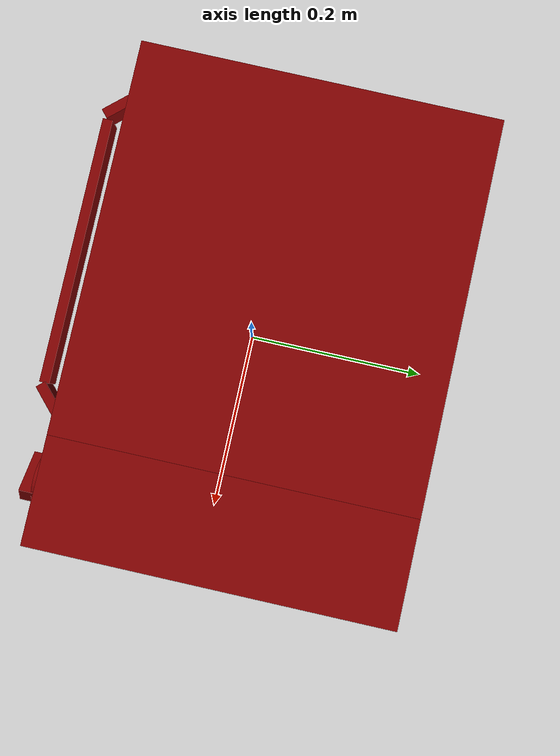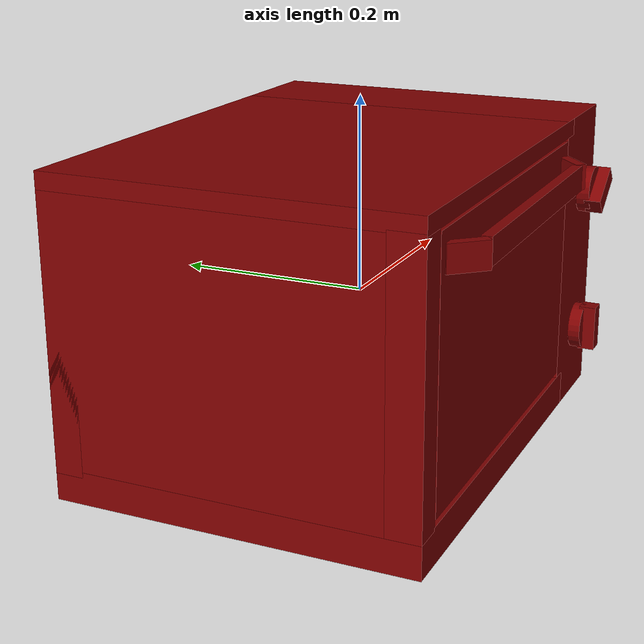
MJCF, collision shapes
<?xml version='1.0' encoding='UTF-8'?>
<mujoco model="model">
  <option timestep="0.002" gravity="0.0 0.0 -9.81"/>
  <compiler angle="radian"/>
  <asset>
    <mesh file="visuals/Body001.obj" name="Body001_vis"/>
    <mesh file="visuals/Container001.obj" name="Container001_vis"/>
    <mesh file="visuals/Door001.obj" name="Door001_vis"/>
    <mesh file="visuals/Door001_Clear.obj" name="Door001_Clear_vis"/>
    <mesh file="visuals/Knob001.obj" name="Knob001_vis"/>
    <mesh file="visuals/Knob002.obj" name="Knob002_vis"/>
    <texture file="visuals/T_BC001.png" name="Body001_material" type="2d"/>
    <material name="Body001_material" rgba="1 1 1 1.0" texture="Body001_material" shininess="1" specular="6"/>
    <texture file="visuals/T_BC001.png" name="Container001_material" type="2d"/>
    <material name="Container001_material" rgba="1 1 1 1.0" texture="Container001_material" shininess="0.141421377658844" specular="0.3103448502657381"/>
    <texture file="visuals/T_BC001.png" name="Door001_material" type="2d"/>
    <material name="Door001_material" rgba="1 1 1 1.0" texture="Door001_material" shininess="0.6" specular="2"/>
    <texture file="visuals/T_BC001.png" name="Door001_Clear_material" type="2d"/>
    <material name="Door001_Clear_material" rgba="1 1 1 0.7896907329559326" texture="Door001_Clear_material" shininess="0.141421377658844" specular="0.3103448502657381"/>
    <texture file="visuals/T_BC001.png" name="Knob001_material" type="2d"/>
    <material name="Knob001_material" rgba="1 1 1 1.0" texture="Knob001_material" shininess="0.141421377658844" specular="0.3103448502657381"/>
    <texture file="visuals/T_BC001.png" name="Knob002_material" type="2d"/>
    <material name="Knob002_material" rgba="1 1 1 1.0" texture="Knob002_material" shininess="0.141421377658844" specular="0.3103448502657381"/>
  </asset>
  <default>
    <default class="visual">
      <geom conaffinity="0" contype="0" group="1" type="mesh"/>
    </default>
    <default class="collision">
      <geom group="0" rgba="0.5 0 0 0.5"/>
    </default>
    <default class="spawn">
      <geom group="0" rgba="1 1 1 0.5" contype="0" conaffinity="0"/>
      <site group="0" rgba="1 1 1 0.5"/>
    </default>
    <default class="region">
      <geom group="1" conaffinity="0" contype="0" rgba="0 1 0 0"/>
    </default>
  </default>
  <worldbody>
    <body>
      <body name="object">
        <geom mesh="Body001_vis" type="mesh" solimp="0.998 0.998 0.001" solref="0.001 1" friction="0.95 0.3 0.1" class="visual" material="Body001_material"/>
        <geom class="collision" type="box" pos="-0.239847 0.031707 0.009233" size="0.016103293746709824 0.16864113509655 0.1361086219549179" quat="1.0 0.0 0.0 0.0"/>
        <geom class="collision" type="box" pos="-0.045299 0.014824 -0.141983" size="0.2106505185365677 0.18552252650260925 0.01835312321782112" quat="1.0 0.0 0.0 0.0"/>
        <geom class="collision" type="box" pos="-0.046929 0.185510 0.013824" size="0.20902132987976074 0.014838124625384808 0.14651153981685638" quat="1.0 0.0 0.0 0.0"/>
        <geom class="collision" type="box" pos="0.201390 0.014825 0.000000" size="0.05456048622727394 0.18552327156066895 0.16033624112606049" quat="1.0 0.0 0.0 0.0"/>
        <geom class="collision" type="box" pos="-0.044852 0.014824 0.151618" size="0.2110985964536667 0.18552300333976746 0.008718099445104599" quat="1.0 0.0 0.0 0.0"/>
        <geom class="collision" type="box" pos="-0.223048 0.030425 -0.003781" size="0.008748199790716171 0.14672890305519104 0.016295943409204483" quat="1.0 0.0 0.0 0.0"/>
        <geom class="collision" type="box" pos="-0.223048 0.030425 -0.041953" size="0.008748199790716171 0.14672890305519104 0.016295943409204483" quat="1.0 0.0 0.0 0.0"/>
        <geom class="collision" type="box" pos="0.145772 0.030425 -0.004404" size="0.008748222142457962 0.1467292159795761 0.01597226783633232" quat="1.0 0.0 0.0 0.0"/>
        <geom class="collision" type="box" pos="0.145772 0.030425 -0.041975" size="0.008748199790716171 0.14672890305519104 0.016295943409204483" quat="1.0 0.0 0.0 0.0"/>
        <geom class="collision" type="box" pos="-0.241250 -0.153254 0.009233" size="0.014700651168823242 0.01744471862912178 0.13610891997814178" quat="1.0 0.0 0.0 0.0"/>
        <body name="Container001">
          <joint axis="0.0 -1.0 0.0" pos="-0.039005 0.011501 -0.025094" limited="true" name="Container001_joint" range="0.0 0.26" type="slide" damping="1" frictionloss="1" armature=".01" stiffness="0.05"/>
          <geom mesh="Container001_vis" type="mesh" solimp="0.998 0.998 0.001" solref="0.001 1" friction="0.95 0.3 0.1" class="visual" material="Container001_material"/>
          <geom class="collision" type="box" pos="-0.038349 0.011718 -0.033122" size="0.1529725193977356 0.12284987419843674 0.0030371074099093676" quat="1.0 0.0 0.0 0.0"/>
          <geom class="collision" type="box" pos="-0.211341 0.011638 -0.023408" size="0.009668748825788498 0.12300089001655579 0.001667578355409205" quat="1.0 0.0 0.0 0.0"/>
          <geom class="collision" type="box" pos="-0.196781 0.011631 -0.028198" size="0.009363675490021706 0.12300733476877213 0.0017728143138810992" quat="0.9440328478813171 -2.0632493047401113e-08 0.3298514187335968 7.209131958063608e-09"/>
          <geom class="collision" type="box" pos="0.120010 0.011631 -0.028198" size="0.009363675490021706 0.12300733476877213 0.001772815827280283" quat="7.127249546101666e-08 -0.9440328478813171 -2.4903089368422116e-08 -0.3298514187335968"/>
          <geom class="collision" type="box" pos="0.133221 0.011638 -0.023408" size="0.009668748825788498 0.12300089001655579 0.0016675770748406649" quat="1.0 0.0 0.0 0.0"/>
          <geom class="collision" type="box" pos="-0.192158 0.013689 -0.022930" size="0.010679437778890133 0.10141760855913162 0.0015187599929049611" quat="0.8347760438919067 4.428884636809016e-08 0.5505896806716919 -1.4126166902883597e-09"/>
          <geom class="collision" type="box" pos="-0.041494 -0.099872 -0.022452" size="0.010395567864179611 0.13789184391498566 0.0013619262026622891" quat="0.560017466545105 -0.4317176938056946 0.4317167103290558 0.5600187182426453"/>
          <geom class="collision" type="box" pos="0.114873 0.013689 -0.022930" size="0.010679437778890133 0.10141760855913162 0.0015187592944130301" quat="3.0570728171142036e-08 0.8347760438919067 7.635383880710833e-09 0.5505896806716919"/>
          <geom class="collision" type="box" pos="-0.041494 0.127587 -0.022452" size="0.010395568795502186 0.13789185881614685 0.0013619264354929328" quat="0.43171998858451843 -0.560014545917511 -0.5600216388702393 -0.43171441555023193"/>
          <geom class="collision" type="box" pos="-0.188498 -0.089711 -0.022930" size="0.010601936839520931 0.007320170756429434 0.0014857678906992078" quat="0.8021135926246643 -0.15250766277313232 0.529046893119812 0.2312241494655609"/>
          <geom class="collision" type="box" pos="-0.179625 -0.096934 -0.022930" size="0.010463968850672245 0.007741295266896486 0.0014083052519708872" quat="0.7184903621673584 -0.28031352162361145 0.4738919734954834 0.42499685287475586"/>
          <geom class="collision" type="box" pos="-0.200352 0.013973 -0.014919" size="0.004787334240972996 0.10587436705827713 0.0010674488730728626" quat="1.0 0.0 0.0 0.0"/>
          <geom class="collision" type="box" pos="-0.038654 -0.103487 -0.014919" size="0.1498337984085083 0.0026962740812450647 0.0010674601653590798" quat="1.0 0.0 0.0 0.0"/>
          <geom class="collision" type="box" pos="-0.197350 -0.093677 -0.014919" size="0.004690607078373432 0.005177871324121952 0.001067434437572956" quat="0.9630976915359497 -7.488370812325229e-08 -9.148788393531504e-09 0.26915204524993896"/>
          <geom class="collision" type="box" pos="-0.190555 -0.099359 -0.014919" size="0.004428202286362648 0.006440978031605482 0.001067434437572956" quat="0.8660538792610168 -1.892820655768901e-08 -1.0926773263975065e-08 0.49995070695877075"/>
          <geom class="collision" type="box" pos="-0.190555 0.126876 -0.014919" size="0.004428203217685223 0.0064409771002829075 0.001067434437572956" quat="4.651262841548487e-08 -0.4999507665634155 -0.8660538196563721 -7.043785643645606e-08"/>
          <geom class="collision" type="box" pos="-0.197350 0.121193 -0.014919" size="0.004690608009696007 0.0051778703927993774 0.001067434437572956" quat="8.102094284367922e-08 0.26915183663368225 0.9630977511405945 9.41175226643054e-09"/>
          <geom class="collision" type="box" pos="-0.179625 0.124450 -0.022930" size="0.01046396978199482 0.007741293404251337 0.001408305368386209" quat="0.47389188408851624 -0.4249967038631439 -0.7184905409812927 -0.2803133726119995"/>
          <geom class="collision" type="box" pos="-0.188498 0.117228 -0.022930" size="0.010601934976875782 0.0073201400227844715 0.0014857678906992078" quat="0.5290468335151672 -0.23122408986091614 -0.8021136522293091 -0.15250760316848755"/>
          <geom class="collision" type="box" pos="-0.038654 0.131908 -0.014919" size="0.1498337984085083 0.0026962740812450647 0.0010674601653590798" quat="1.0 0.0 0.0 0.0"/>
          <geom class="collision" type="box" pos="0.111319 0.117228 -0.022930" size="0.010601936839520931 0.007320139557123184 0.001485767774283886" quat="0.23122403025627136 0.529046893119812 0.15250752866268158 -0.8021136522293091"/>
          <geom class="collision" type="box" pos="0.102343 0.124450 -0.022930" size="0.010463968850672245 0.007741293404251337 0.0014083050191402435" quat="0.42499667406082153 0.4738917648792267 0.2803133726119995 -0.7184906601905823"/>
          <geom class="collision" type="box" pos="0.120069 0.121193 -0.014919" size="0.0046906243078410625 0.0051778703927993774 0.001067434437572956" quat="0.2691517472267151 6.8937788810785605e-09 1.7478615887966953e-08 -0.9630978107452393"/>
          <geom class="collision" type="box" pos="0.113274 0.126876 -0.014919" size="0.004428204149007797 0.006440978497266769 0.001067434437572956" quat="0.49995073676109314 1.88726119176863e-08 -3.26926254956561e-08 -0.8660538196563721"/>
          <geom class="collision" type="box" pos="0.113725 -0.099359 -0.014919" size="0.004428202286362648 0.006440978031605482 0.001067434437572956" quat="6.538523678045749e-08 -0.8660538792610168 0.49995070695877075 -3.774524515165467e-08"/>
          <geom class="collision" type="box" pos="0.120520 -0.093677 -0.014919" size="0.004690627567470074 0.005177873652428389 0.001067434437572956" quat="7.576508664897119e-08 -0.9630977511405945 0.26915186643600464 -9.395116684629556e-09"/>
          <geom class="collision" type="box" pos="0.102343 -0.096934 -0.022930" size="0.010463970713317394 0.007741294335573912 0.0014083052519708872" quat="0.28031328320503235 0.7184906005859375 -0.42499667406082153 0.473891943693161"/>
          <geom class="collision" type="box" pos="0.111217 -0.089711 -0.022930" size="0.010601936839520931 0.0073201400227844715 0.0014857678906992078" quat="0.15250754356384277 0.8021135926246643 -0.23122413456439972 0.529046893119812"/>
          <geom class="collision" type="box" pos="0.123303 0.013973 -0.014919" size="0.0047873323783278465 0.10587436705827713 0.0010674488730728626" quat="1.0 0.0 0.0 0.0"/>
        </body>
        <body name="Door001">
          <joint axis="1.0 0.0 0.0" pos="0.004049 -0.166860 -0.122088" limited="true" name="Door001_joint" range="0.0 1.5707963267948966" type="hinge" damping="1" frictionloss="1" armature=".01" stiffness="1" springref="-0.2"/>
          <geom mesh="Door001_vis" type="mesh" solimp="0.998 0.998 0.001" solref="0.001 1" friction="0.95 0.3 0.1" class="visual" material="Door001_material"/>
          <geom class="collision" type="box" pos="-0.039341 -0.167110 0.011275" size="0.18538400530815125 0.0035882568918168545 0.12862595915794373" quat="1.0 0.0 0.0 0.0"/>
          <geom class="collision" type="box" pos="0.116597 -0.183692 0.114183" size="0.019696667790412903 0.005493865814059973 0.013131000101566315" quat="1.814838412883546e-07 0.9320859909057617 0.36223703622817993 7.053017014868601e-08"/>
          <geom class="collision" type="box" pos="-0.040084 -0.193701 0.113872" size="0.1399654597043991 0.005172303412109613 0.01313098892569542" quat="1.0 0.0 0.0 0.0"/>
          <geom class="collision" type="box" pos="-0.198307 -0.183410 0.114183" size="0.020143670961260796 0.005374647676944733 0.013131000101566315" quat="0.9129475355148315 0.0 -0.0 -0.4080769717693329"/>
          <body name="Door001_Clear">
            <geom mesh="Door001_Clear_vis" type="mesh" solimp="0.998 0.998 0.001" solref="0.001 1" friction="0.95 0.3 0.1" class="visual" material="Door001_Clear_material"/>
            <geom class="collision" type="box" pos="-0.041207 -0.165826 0.008301" size="0.1293821483850479 0.001589049817994237 0.07643870264291763" quat="1.0 0.0 0.0 0.0"/>
          </body>
        </body>
        <body name="Knob001">
          <joint axis="0.0 1.0 0.0" pos="0.201755 -0.185671 0.078255" limited="true" name="Knob001_joint" range="0.0 4.39822971502571" type="hinge" damping="0.05" armature="0.001" springref="-0.4"/>
          <geom mesh="Knob001_vis" type="mesh" solimp="0.998 0.998 0.001" solref="0.001 1" friction="0.95 0.3 0.1" class="visual" material="Knob001_material"/>
          <geom class="collision" type="box" pos="0.201954 -0.191332 0.078049" size="0.009441480040550232 0.009057309478521347 0.024213304743170738" quat="0.894934356212616 0.0 0.44619786739349365 0.0"/>
          <geom class="collision" type="cylinder" pos="0.201740 -0.180617 0.078268" size="0.024659136310219765 0.007099910639226437" quat="0.7071067690849304 0.7071067690849304 0.0 0.0"/>
        </body>
        <body name="Knob002">
          <joint axis="0.0 1.0 0.0" pos="0.202067 -0.182695 -0.078672" limited="true" name="Knob002_joint" range="0.0 4.014257279586958" type="hinge" damping="0.05" armature="0.001"/>
          <geom mesh="Knob002_vis" type="mesh" solimp="0.998 0.998 0.001" solref="0.001 1" friction="0.95 0.3 0.1" class="visual" material="Knob002_material"/>
          <geom class="collision" type="box" pos="0.201596 -0.189347 -0.078306" size="0.009441480040550232 0.009057312272489071 0.024213304743170738" quat="1.0 0.0 0.0 0.0"/>
          <geom class="collision" type="cylinder" pos="0.202271 -0.178811 -0.078532" size="0.024659136310219765 0.0063616069965064526" quat="0.7071067690849304 0.7071067690849304 0.0 0.0"/>
        </body>
        <geom class="region" name="reg_int" type="box" pos="-0.038835499999999995 0.0045540000000000025 0.009730000000000003" size="0.1875995 0.167715 0.133197"/>
        <geom class="region" name="reg_main" type="box" pos="0.0 0.013371999999999995 0.0" size="0.25595 0.186976 0.160336"/>
      </body>
    </body>
  </worldbody>
  <actuator>
    <motor name="Container001_joint_actuator" joint="Container001_joint" gear="10"/>
    <motor name="Door001_joint_actuator" joint="Door001_joint" gear="10"/>
    <motor name="Knob001_joint_actuator" joint="Knob001_joint" gear="10"/>
    <motor name="Knob002_joint_actuator" joint="Knob002_joint" gear="10"/>
  </actuator>
</mujoco>
